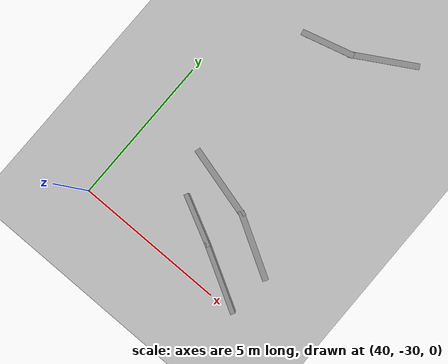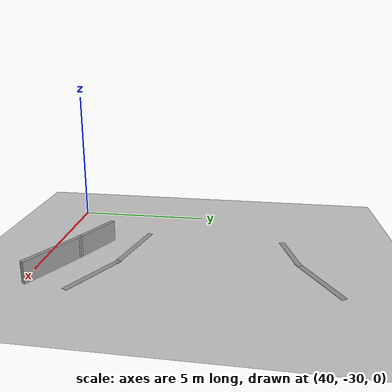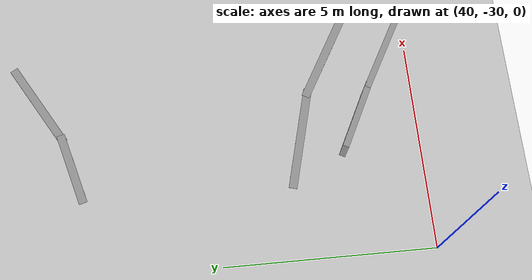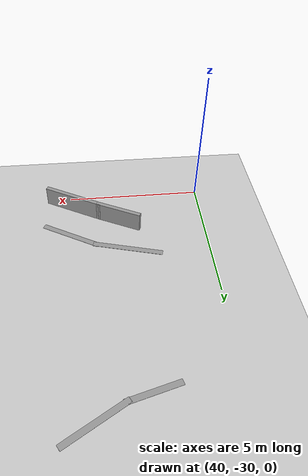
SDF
<sdf version="1.6">
 <world name="default">
  <model name="ground_plane">
   <static>1</static>
   <link name="link">
    <collision name="collision">
     <geometry><plane><normal>0 0 1</normal><size>100 100</size></plane></geometry>
     <surface>
      <contact><collide_bitmask>65535</collide_bitmask></contact>
      <friction><ode><mu>100</mu><mu2>50</mu2></ode></friction>
     </surface>
    </collision>
    <visual name="visual">
     <cast_shadows>0</cast_shadows>
     <geometry><plane><normal>0 0 1</normal><size>100 100</size></plane></geometry>
     <material>
      <script><uri>file://media/materials/scripts/gazebo.material</uri><name>Gazebo/Grey</name></script>
     </material>
    </visual>
   </link>
  </model>
  <model name="GercekDuvarSeritKoyu1">
   <link name="Wall_116">
    <pose>-25.3549 -15.0386 0 0 0 -2.08015</pose>
    <inertial>
     <mass>1</mass>
     <inertia><ixx>1</ixx><ixy>0</ixy><ixz>0</ixz><iyy>1</iyy><iyz>0</iyz><izz>1</izz></inertia>
    </inertial>
    <visual name="Wall_116_Visual">
     <pose>0 0 0.375 0 -0 0</pose>
     <geometry><box><size>2.30372 0.15 0.75</size></box></geometry>
     <material>
      <script><uri>file://media/materials/scripts/gazebo.material</uri><name>Gazebo/Grey</name></script>
      <ambient>0.5 0.5 0.5 1</ambient>
      <shader type="pixel"><normal_map>__default__</normal_map></shader>
      <diffuse>0.7 0.7 0.7 1</diffuse>
      <specular>0.01 0.01 0.01 1</specular>
      <emissive>0 0 0 1</emissive>
     </material>
     <meta><layer>0</layer></meta>
    </visual>
    <collision name="Wall_116_Collision">
     <pose>0 0 0.375 0 -0 0</pose>
     <geometry><box><size>2.30372 0.15 0.75</size></box></geometry>
     <surface>
      <friction>
       <ode><mu>1</mu><mu2>1</mu2><fdir1>0 0 0</fdir1><slip1>0</slip1><slip2>0</slip2></ode>
       <torsional>
        <coefficient>1</coefficient>
        <patch_radius>0</patch_radius>
        <surface_radius>0</surface_radius>
        <use_patch_radius>1</use_patch_radius>
        <ode><slip>0</slip></ode>
       </torsional>
      </friction>
      <bounce><restitution_coefficient>0</restitution_coefficient><threshold>1e+06</threshold></bounce>
      <contact>
       <collide_without_contact>0</collide_without_contact>
       <collide_without_contact_bitmask>1</collide_without_contact_bitmask>
       <collide_bitmask>1</collide_bitmask>
       <ode>
        <soft_cfm>0</soft_cfm>
        <soft_erp>0.2</soft_erp>
        <kp>1e+13</kp>
        <kd>1</kd>
        <max_vel>0.01</max_vel>
        <min_depth>0</min_depth>
       </ode>
       <bullet>
        <split_impulse>1</split_impulse>
        <split_impulse_penetration_threshold>-0.01</split_impulse_penetration_threshold>
        <soft_cfm>0</soft_cfm>
        <soft_erp>0.2</soft_erp>
        <kp>1e+13</kp>
        <kd>1</kd>
       </bullet>
      </contact>
     </surface>
    </collision>
   </link>
   <link name="Wall_117">
    <pose>-26.2384 -16.6896 0 0 0 -2.03781</pose>
    <inertial>
     <mass>1</mass>
     <inertia><ixx>1</ixx><ixy>0</ixy><ixz>0</ixz><iyy>1</iyy><iyz>0</iyz><izz>1</izz></inertia>
    </inertial>
    <visual name="Wall_117_Visual">
     <pose>0 0 0.375 0 -0 0</pose>
     <geometry><box><size>1.74204 0.15 0.75</size></box></geometry>
     <material>
      <script><uri>file://media/materials/scripts/gazebo.material</uri><name>Gazebo/Grey</name></script>
      <ambient>0.5 0.5 0.5 1</ambient>
      <shader type="pixel"><normal_map>__default__</normal_map></shader>
      <diffuse>0.7 0.7 0.7 1</diffuse>
      <specular>0.01 0.01 0.01 1</specular>
      <emissive>0 0 0 1</emissive>
     </material>
     <meta><layer>0</layer></meta>
    </visual>
    <collision name="Wall_117_Collision">
     <pose>0 0 0.375 0 -0 0</pose>
     <geometry><box><size>1.74204 0.15 0.75</size></box></geometry>
     <surface>
      <friction>
       <ode><mu>1</mu><mu2>1</mu2><fdir1>0 0 0</fdir1><slip1>0</slip1><slip2>0</slip2></ode>
       <torsional>
        <coefficient>1</coefficient>
        <patch_radius>0</patch_radius>
        <surface_radius>0</surface_radius>
        <use_patch_radius>1</use_patch_radius>
        <ode><slip>0</slip></ode>
       </torsional>
      </friction>
      <bounce><restitution_coefficient>0</restitution_coefficient><threshold>1e+06</threshold></bounce>
      <contact>
       <collide_without_contact>0</collide_without_contact>
       <collide_without_contact_bitmask>1</collide_without_contact_bitmask>
       <collide_bitmask>1</collide_bitmask>
       <ode>
        <soft_cfm>0</soft_cfm>
        <soft_erp>0.2</soft_erp>
        <kp>1e+13</kp>
        <kd>1</kd>
        <max_vel>0.01</max_vel>
        <min_depth>0</min_depth>
       </ode>
       <bullet>
        <split_impulse>1</split_impulse>
        <split_impulse_penetration_threshold>-0.01</split_impulse_penetration_threshold>
        <soft_cfm>0</soft_cfm>
        <soft_erp>0.2</soft_erp>
        <kp>1e+13</kp>
        <kd>1</kd>
       </bullet>
      </contact>
     </surface>
    </collision>
   </link>
   <link name="Wall_350">
    <pose>-33.1009 -17.1841 0 0 -0 1.83261</pose>
    <visual name="Wall_350_Visual">
     <pose>0 0 0.005 0 -0 0</pose>
     <geometry><box><size>1.79994 0.2 0.01</size></box></geometry>
     <material>
      <script><uri>file://media/materials/scripts/gazebo.material</uri><name>Gazebo/Grey</name></script>
      <ambient>1 1 1 1</ambient>
      <shader type="pixel"/>
     </material>
     <meta><layer>0</layer></meta>
    </visual>
    <collision name="Wall_350_Collision">
     <pose>0 0 0.005 0 -0 0</pose>
     <geometry><box><size>1.79994 0.2 0.01</size></box></geometry>
     <surface>
      <friction>
       <ode><mu>1</mu><mu2>1</mu2><fdir1>0 0 0</fdir1><slip1>0</slip1><slip2>0</slip2></ode>
       <torsional>
        <coefficient>1</coefficient>
        <patch_radius>0</patch_radius>
        <surface_radius>0</surface_radius>
        <use_patch_radius>1</use_patch_radius>
        <ode><slip>0</slip></ode>
       </torsional>
      </friction>
      <bounce><restitution_coefficient>0</restitution_coefficient><threshold>1e+06</threshold></bounce>
      <contact>
       <collide_without_contact>0</collide_without_contact>
       <collide_without_contact_bitmask>1</collide_without_contact_bitmask>
       <collide_bitmask>1</collide_bitmask>
       <ode>
        <soft_cfm>0</soft_cfm>
        <soft_erp>0.2</soft_erp>
        <kp>1e+13</kp>
        <kd>1</kd>
        <max_vel>0.01</max_vel>
        <min_depth>0</min_depth>
       </ode>
       <bullet>
        <split_impulse>1</split_impulse>
        <split_impulse_penetration_threshold>-0.01</split_impulse_penetration_threshold>
        <soft_cfm>0</soft_cfm>
        <soft_erp>0.2</soft_erp>
        <kp>1e+13</kp>
        <kd>1</kd>
       </bullet>
      </contact>
     </surface>
    </collision>
   </link>
   <link name="Wall_351">
    <pose>-33.8329 -15.5021 0 0 -0 2.09431</pose>
    <visual name="Wall_351_Visual">
     <pose>0 0 0.005 0 -0 0</pose>
     <geometry><box><size>2.30038 0.2 0.01</size></box></geometry>
     <material>
      <script><uri>file://media/materials/scripts/gazebo.material</uri><name>Gazebo/Grey</name></script>
      <ambient>1 1 1 1</ambient>
      <shader type="pixel"/>
     </material>
     <meta><layer>0</layer></meta>
    </visual>
    <collision name="Wall_351_Collision">
     <pose>0 0 0.005 0 -0 0</pose>
     <geometry><box><size>2.30038 0.2 0.01</size></box></geometry>
     <surface>
      <friction>
       <ode><mu>1</mu><mu2>1</mu2><fdir1>0 0 0</fdir1><slip1>0</slip1><slip2>0</slip2></ode>
       <torsional>
        <coefficient>1</coefficient>
        <patch_radius>0</patch_radius>
        <surface_radius>0</surface_radius>
        <use_patch_radius>1</use_patch_radius>
        <ode><slip>0</slip></ode>
       </torsional>
      </friction>
      <bounce><restitution_coefficient>0</restitution_coefficient><threshold>1e+06</threshold></bounce>
      <contact>
       <collide_without_contact>0</collide_without_contact>
       <collide_without_contact_bitmask>1</collide_without_contact_bitmask>
       <collide_bitmask>1</collide_bitmask>
       <ode>
        <soft_cfm>0</soft_cfm>
        <soft_erp>0.2</soft_erp>
        <kp>1e+13</kp>
        <kd>1</kd>
        <max_vel>0.01</max_vel>
        <min_depth>0</min_depth>
       </ode>
       <bullet>
        <split_impulse>1</split_impulse>
        <split_impulse_penetration_threshold>-0.01</split_impulse_penetration_threshold>
        <soft_cfm>0</soft_cfm>
        <soft_erp>0.2</soft_erp>
        <kp>1e+13</kp>
        <kd>1</kd>
       </bullet>
      </contact>
     </surface>
    </collision>
   </link>
   <link name="Wall_407">
    <pose>-26.7399 -14.8816 0 0 0 -2.09455</pose>
    <visual name="Wall_407_Visual">
     <pose>0 0 0.005 0 -0 0</pose>
     <geometry><box><size>2.29978 0.2 0.01</size></box></geometry>
     <material>
      <script><uri>file://media/materials/scripts/gazebo.material</uri><name>Gazebo/Grey</name></script>
      <ambient>1 1 1 1</ambient>
      <shader type="pixel"/>
     </material>
     <meta><layer>0</layer></meta>
    </visual>
    <collision name="Wall_407_Collision">
     <pose>0 0 0.005 0 -0 0</pose>
     <geometry><box><size>2.29978 0.2 0.01</size></box></geometry>
     <surface>
      <friction>
       <ode><mu>1</mu><mu2>1</mu2><fdir1>0 0 0</fdir1><slip1>0</slip1><slip2>0</slip2></ode>
       <torsional>
        <coefficient>1</coefficient>
        <patch_radius>0</patch_radius>
        <surface_radius>0</surface_radius>
        <use_patch_radius>1</use_patch_radius>
        <ode><slip>0</slip></ode>
       </torsional>
      </friction>
      <bounce><restitution_coefficient>0</restitution_coefficient><threshold>1e+06</threshold></bounce>
      <contact>
       <collide_without_contact>0</collide_without_contact>
       <collide_without_contact_bitmask>1</collide_without_contact_bitmask>
       <collide_bitmask>1</collide_bitmask>
       <ode>
        <soft_cfm>0</soft_cfm>
        <soft_erp>0.2</soft_erp>
        <kp>1e+13</kp>
        <kd>1</kd>
        <max_vel>0.01</max_vel>
        <min_depth>0</min_depth>
       </ode>
       <bullet>
        <split_impulse>1</split_impulse>
        <split_impulse_penetration_threshold>-0.01</split_impulse_penetration_threshold>
        <soft_cfm>0</soft_cfm>
        <soft_erp>0.2</soft_erp>
        <kp>1e+13</kp>
        <kd>1</kd>
       </bullet>
      </contact>
     </surface>
    </collision>
   </link>
   <link name="Wall_408">
    <pose>-27.5689 -16.9256 0 0 0 -1.83249</pose>
    <visual name="Wall_408_Visual">
     <pose>0 0 0.005 0 -0 0</pose>
     <geometry><box><size>2.55038 0.2 0.01</size></box></geometry>
     <material>
      <script><uri>file://media/materials/scripts/gazebo.material</uri><name>Gazebo/Grey</name></script>
      <ambient>1 1 1 1</ambient>
      <shader type="pixel"/>
     </material>
     <meta><layer>0</layer></meta>
    </visual>
    <collision name="Wall_408_Collision">
     <pose>0 0 0.005 0 -0 0</pose>
     <geometry><box><size>2.55038 0.2 0.01</size></box></geometry>
     <surface>
      <friction>
       <ode><mu>1</mu><mu2>1</mu2><fdir1>0 0 0</fdir1><slip1>0</slip1><slip2>0</slip2></ode>
       <torsional>
        <coefficient>1</coefficient>
        <patch_radius>0</patch_radius>
        <surface_radius>0</surface_radius>
        <use_patch_radius>1</use_patch_radius>
        <ode><slip>0</slip></ode>
       </torsional>
      </friction>
      <bounce><restitution_coefficient>0</restitution_coefficient><threshold>1e+06</threshold></bounce>
      <contact>
       <collide_without_contact>0</collide_without_contact>
       <collide_without_contact_bitmask>1</collide_without_contact_bitmask>
       <collide_bitmask>1</collide_bitmask>
       <ode>
        <soft_cfm>0</soft_cfm>
        <soft_erp>0.2</soft_erp>
        <kp>1e+13</kp>
        <kd>1</kd>
        <max_vel>0.01</max_vel>
        <min_depth>0</min_depth>
       </ode>
       <bullet>
        <split_impulse>1</split_impulse>
        <split_impulse_penetration_threshold>-0.01</split_impulse_penetration_threshold>
        <soft_cfm>0</soft_cfm>
        <soft_erp>0.2</soft_erp>
        <kp>1e+13</kp>
        <kd>1</kd>
       </bullet>
      </contact>
     </surface>
    </collision>
   </link>
   <static>1</static>
   <pose>59.9324 -54.7034 -0 0 0 -1.5695</pose>
  </model>
 </world>
</sdf>
